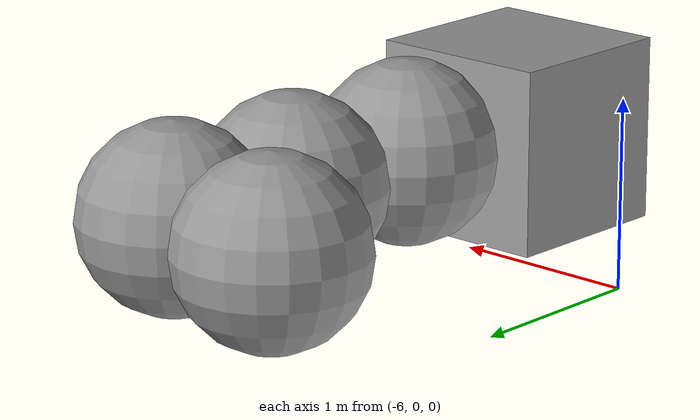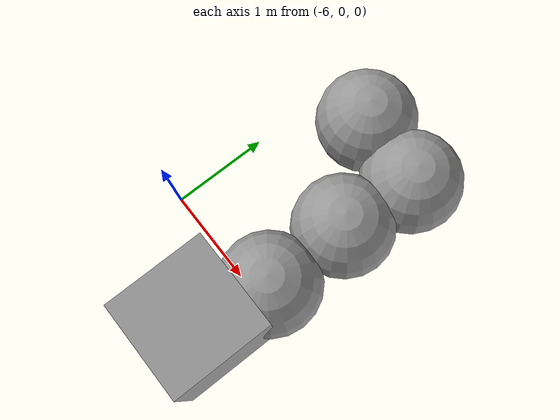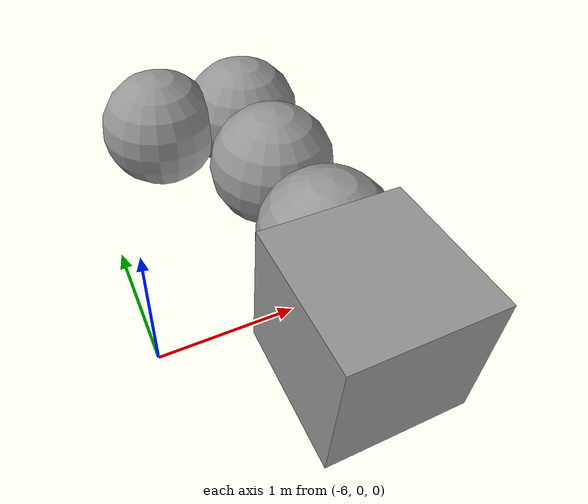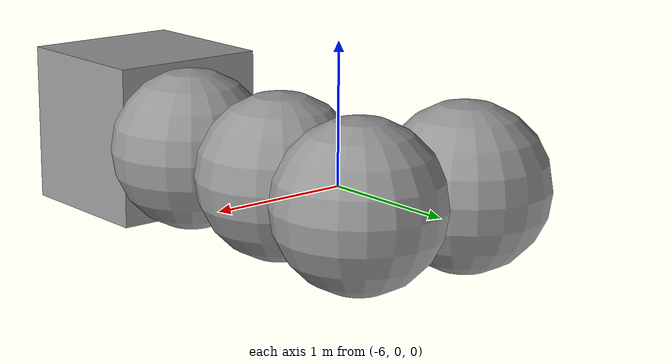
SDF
<?xml version='1.0'?>
<sdf version='1.6'>
  <model name='Robot'>
    <link name='link_12'>
      <inertial>
        <mass>1</mass>
        <inertia>
          <ixx>0.1</ixx>
          <ixy>0</ixy>
          <ixz>0</ixz>
          <iyy>0.1</iyy>
          <iyz>0</iyz>
          <izz>0.1</izz>
        </inertia>
        <pose frame=''>0 0 0 0 -0 0</pose>
      </inertial>
      <pose frame=''>-4.68659 0.152242 0.5 0 -0 0</pose>
      <gravity>1</gravity>
      <self_collide>0</self_collide>
      <kinematic>0</kinematic>
      <enable_wind>0</enable_wind>
      <visual name='visual'>
        <pose frame=''>0 0 0 0 -0 0</pose>
        <geometry>
          <sphere>
            <radius>0.5</radius>
          </sphere>
        </geometry>
        <material>
          <lighting>1</lighting>
          <script>
            <uri>file://media/materials/scripts/gazebo.material</uri>
            <name>Gazebo/Grey</name>
          </script>
          <emissive>0 0 0 1</emissive>
          <shader type='vertex'>
            <normal_map>__default__</normal_map>
          </shader>
        </material>
        <transparency>0</transparency>
        <cast_shadows>1</cast_shadows>
      </visual>
      <collision name='collision'>
        <laser_retro>0</laser_retro>
        <max_contacts>10</max_contacts>
        <pose frame=''>0 0 0 0 -0 0</pose>
        <geometry>
          <sphere>
            <radius>0.5</radius>
          </sphere>
        </geometry>
        <surface>
          <friction>
            <ode>
              <mu>1</mu>
              <mu2>1</mu2>
              <fdir1>0 0 0</fdir1>
              <slip1>0</slip1>
              <slip2>0</slip2>
            </ode>
            <torsional>
              <coefficient>1</coefficient>
              <patch_radius>0</patch_radius>
              <surface_radius>0</surface_radius>
              <use_patch_radius>1</use_patch_radius>
              <ode>
                <slip>0</slip>
              </ode>
            </torsional>
          </friction>
          <bounce>
            <restitution_coefficient>0</restitution_coefficient>
            <threshold>1e+06</threshold>
          </bounce>
          <contact>
            <collide_without_contact>0</collide_without_contact>
            <collide_without_contact_bitmask>1</collide_without_contact_bitmask>
            <collide_bitmask>1</collide_bitmask>
            <ode>
              <soft_cfm>0</soft_cfm>
              <soft_erp>0.2</soft_erp>
              <kp>1e+13</kp>
              <kd>1</kd>
              <max_vel>0.01</max_vel>
              <min_depth>0</min_depth>
            </ode>
            <bullet>
              <split_impulse>1</split_impulse>
              <split_impulse_penetration_threshold>-0.01</split_impulse_penetration_threshold>
              <soft_cfm>0</soft_cfm>
              <soft_erp>0.2</soft_erp>
              <kp>1e+13</kp>
              <kd>1</kd>
            </bullet>
          </contact>
        </surface>
      </collision>
    </link>
    <link name='link_13'>
      <inertial>
        <mass>1</mass>
        <inertia>
          <ixx>0.1</ixx>
          <ixy>0</ixy>
          <ixz>0</ixz>
          <iyy>0.1</iyy>
          <iyz>0</iyz>
          <izz>0.1</izz>
        </inertia>
      </inertial>
      <pose frame=''>-4.69096 1.0203 0.5 0 -0 0</pose>
      <visual name='visual'>
        <pose frame=''>0 0 0 0 -0 0</pose>
        <geometry>
          <sphere>
            <radius>0.5</radius>
          </sphere>
        </geometry>
        <material>
          <lighting>1</lighting>
          <script>
            <uri>file://media/materials/scripts/gazebo.material</uri>
            <name>Gazebo/Grey</name>
          </script>
          <emissive>0 0 0 1</emissive>
        </material>
        <transparency>0</transparency>
        <cast_shadows>1</cast_shadows>
      </visual>
      <collision name='collision'>
        <laser_retro>0</laser_retro>
        <max_contacts>10</max_contacts>
        <pose frame=''>0 0 0 0 -0 0</pose>
        <geometry>
          <sphere>
            <radius>0.5</radius>
          </sphere>
        </geometry>
        <surface>
          <friction>
            <ode>
              <mu>1</mu>
              <mu2>1</mu2>
              <fdir1>0 0 0</fdir1>
              <slip1>0</slip1>
              <slip2>0</slip2>
            </ode>
            <torsional>
              <coefficient>1</coefficient>
              <patch_radius>0</patch_radius>
              <surface_radius>0</surface_radius>
              <use_patch_radius>1</use_patch_radius>
              <ode>
                <slip>0</slip>
              </ode>
            </torsional>
          </friction>
          <bounce>
            <restitution_coefficient>0</restitution_coefficient>
            <threshold>1e+06</threshold>
          </bounce>
          <contact>
            <collide_without_contact>0</collide_without_contact>
            <collide_without_contact_bitmask>1</collide_without_contact_bitmask>
            <collide_bitmask>1</collide_bitmask>
            <ode>
              <soft_cfm>0</soft_cfm>
              <soft_erp>0.2</soft_erp>
              <kp>1e+13</kp>
              <kd>1</kd>
              <max_vel>0.01</max_vel>
              <min_depth>0</min_depth>
            </ode>
            <bullet>
              <split_impulse>1</split_impulse>
              <split_impulse_penetration_threshold>-0.01</split_impulse_penetration_threshold>
              <soft_cfm>0</soft_cfm>
              <soft_erp>0.2</soft_erp>
              <kp>1e+13</kp>
              <kd>1</kd>
            </bullet>
          </contact>
        </surface>
      </collision>
    </link>
    <link name='link_14'>
      <inertial>
        <mass>1</mass>
        <inertia>
          <ixx>0.1</ixx>
          <ixy>0</ixy>
          <ixz>0</ixz>
          <iyy>0.1</iyy>
          <iyz>0</iyz>
          <izz>0.1</izz>
        </inertia>
      </inertial>
      <pose frame=''>-4.62704 1.79374 0.5 0 -0 0</pose>
      <visual name='visual'>
        <pose frame=''>0 0 0 0 -0 0</pose>
        <geometry>
          <sphere>
            <radius>0.5</radius>
          </sphere>
        </geometry>
        <material>
          <lighting>1</lighting>
          <script>
            <uri>file://media/materials/scripts/gazebo.material</uri>
            <name>Gazebo/Grey</name>
          </script>
          <emissive>0 0 0 1</emissive>
        </material>
        <transparency>0</transparency>
        <cast_shadows>1</cast_shadows>
      </visual>
      <collision name='collision'>
        <laser_retro>0</laser_retro>
        <max_contacts>10</max_contacts>
        <pose frame=''>0 0 0 0 -0 0</pose>
        <geometry>
          <sphere>
            <radius>0.5</radius>
          </sphere>
        </geometry>
        <surface>
          <friction>
            <ode>
              <mu>1</mu>
              <mu2>1</mu2>
              <fdir1>0 0 0</fdir1>
              <slip1>0</slip1>
              <slip2>0</slip2>
            </ode>
            <torsional>
              <coefficient>1</coefficient>
              <patch_radius>0</patch_radius>
              <surface_radius>0</surface_radius>
              <use_patch_radius>1</use_patch_radius>
              <ode>
                <slip>0</slip>
              </ode>
            </torsional>
          </friction>
          <bounce>
            <restitution_coefficient>0</restitution_coefficient>
            <threshold>1e+06</threshold>
          </bounce>
          <contact>
            <collide_without_contact>0</collide_without_contact>
            <collide_without_contact_bitmask>1</collide_without_contact_bitmask>
            <collide_bitmask>1</collide_bitmask>
            <ode>
              <soft_cfm>0</soft_cfm>
              <soft_erp>0.2</soft_erp>
              <kp>1e+13</kp>
              <kd>1</kd>
              <max_vel>0.01</max_vel>
              <min_depth>0</min_depth>
            </ode>
            <bullet>
              <split_impulse>1</split_impulse>
              <split_impulse_penetration_threshold>-0.01</split_impulse_penetration_threshold>
              <soft_cfm>0</soft_cfm>
              <soft_erp>0.2</soft_erp>
              <kp>1e+13</kp>
              <kd>1</kd>
            </bullet>
          </contact>
        </surface>
      </collision>
    </link>
    <link name='link_15'>
      <inertial>
        <mass>1</mass>
        <inertia>
          <ixx>0.1</ixx>
          <ixy>0</ixy>
          <ixz>0</ixz>
          <iyy>0.1</iyy>
          <iyz>0</iyz>
          <izz>0.1</izz>
        </inertia>
      </inertial>
      <pose frame=''>-5.36128 1.86089 0.5 0 -0 0</pose>
      <visual name='visual'>
        <pose frame=''>0 0 0 0 -0 0</pose>
        <geometry>
          <sphere>
            <radius>0.5</radius>
          </sphere>
        </geometry>
        <material>
          <lighting>1</lighting>
          <script>
            <uri>file://media/materials/scripts/gazebo.material</uri>
            <name>Gazebo/Grey</name>
          </script>
          <emissive>0 0 0 1</emissive>
        </material>
        <transparency>0</transparency>
        <cast_shadows>1</cast_shadows>
      </visual>
      <collision name='collision'>
        <laser_retro>0</laser_retro>
        <max_contacts>10</max_contacts>
        <pose frame=''>0 0 0 0 -0 0</pose>
        <geometry>
          <sphere>
            <radius>0.5</radius>
          </sphere>
        </geometry>
        <surface>
          <friction>
            <ode>
              <mu>1</mu>
              <mu2>1</mu2>
              <fdir1>0 0 0</fdir1>
              <slip1>0</slip1>
              <slip2>0</slip2>
            </ode>
            <torsional>
              <coefficient>1</coefficient>
              <patch_radius>0</patch_radius>
              <surface_radius>0</surface_radius>
              <use_patch_radius>1</use_patch_radius>
              <ode>
                <slip>0</slip>
              </ode>
            </torsional>
          </friction>
          <bounce>
            <restitution_coefficient>0</restitution_coefficient>
            <threshold>1e+06</threshold>
          </bounce>
          <contact>
            <collide_without_contact>0</collide_without_contact>
            <collide_without_contact_bitmask>1</collide_without_contact_bitmask>
            <collide_bitmask>1</collide_bitmask>
            <ode>
              <soft_cfm>0</soft_cfm>
              <soft_erp>0.2</soft_erp>
              <kp>1e+13</kp>
              <kd>1</kd>
              <max_vel>0.01</max_vel>
              <min_depth>0</min_depth>
            </ode>
            <bullet>
              <split_impulse>1</split_impulse>
              <split_impulse_penetration_threshold>-0.01</split_impulse_penetration_threshold>
              <soft_cfm>0</soft_cfm>
              <soft_erp>0.2</soft_erp>
              <kp>1e+13</kp>
              <kd>1</kd>
            </bullet>
          </contact>
        </surface>
      </collision>
    </link>
    <link name='link_5'>
      <inertial>
        <mass>1</mass>
        <inertia>
          <ixx>0.166667</ixx>
          <ixy>0</ixy>
          <ixz>0</ixz>
          <iyy>0.166667</iyy>
          <iyz>0</iyz>
          <izz>0.166667</izz>
        </inertia>
        <pose frame=''>0 0 0 0 -0 0</pose>
      </inertial>
      <pose frame=''>-4.83573 -0.571615 0.5 0 -0 0</pose>
      <gravity>1</gravity>
      <self_collide>0</self_collide>
      <kinematic>0</kinematic>
      <enable_wind>0</enable_wind>
      <visual name='visual'>
        <pose frame=''>0 0 0 0 -0 0</pose>
        <geometry>
          <box>
            <size>1 1 1</size>
          </box>
        </geometry>
        <material>
          <lighting>1</lighting>
          <script>
            <uri>file://media/materials/scripts/gazebo.material</uri>
            <name>Gazebo/Grey</name>
          </script>
          <emissive>0 0 0 1</emissive>
          <shader type='vertex'>
            <normal_map>__default__</normal_map>
          </shader>
          <ambient>0.3 0.3 0.3 1</ambient>
          <diffuse>0.7 0.7 0.7 1</diffuse>
          <specular>0.01 0.01 0.01 1</specular>
        </material>
        <transparency>0</transparency>
        <cast_shadows>1</cast_shadows>
      </visual>
      <collision name='collision'>
        <laser_retro>0</laser_retro>
        <max_contacts>10</max_contacts>
        <pose frame=''>0 0 0 0 -0 0</pose>
        <geometry>
          <box>
            <size>1 1 1</size>
          </box>
        </geometry>
        <surface>
          <friction>
            <ode>
              <mu>1</mu>
              <mu2>1</mu2>
              <fdir1>0 0 0</fdir1>
              <slip1>0</slip1>
              <slip2>0</slip2>
            </ode>
            <torsional>
              <coefficient>1</coefficient>
              <patch_radius>0</patch_radius>
              <surface_radius>0</surface_radius>
              <use_patch_radius>1</use_patch_radius>
              <ode>
                <slip>0</slip>
              </ode>
            </torsional>
          </friction>
          <bounce>
            <restitution_coefficient>0</restitution_coefficient>
            <threshold>1e+06</threshold>
          </bounce>
          <contact>
            <collide_without_contact>0</collide_without_contact>
            <collide_without_contact_bitmask>1</collide_without_contact_bitmask>
            <collide_bitmask>1</collide_bitmask>
            <ode>
              <soft_cfm>0</soft_cfm>
              <soft_erp>0.2</soft_erp>
              <kp>1e+13</kp>
              <kd>1</kd>
              <max_vel>0.01</max_vel>
              <min_depth>0</min_depth>
            </ode>
            <bullet>
              <split_impulse>1</split_impulse>
              <split_impulse_penetration_threshold>-0.01</split_impulse_penetration_threshold>
              <soft_cfm>0</soft_cfm>
              <soft_erp>0.2</soft_erp>
              <kp>1e+13</kp>
              <kd>1</kd>
            </bullet>
          </contact>
        </surface>
      </collision>
    </link>
    <joint name='link_12_JOINT_5' type='revolute'>
      <parent>link_12</parent>
      <child>link_5</child>
      <pose frame=''>0 0 0 0 -0 0</pose>
      <axis>
        <xyz>0 0 1</xyz>
        <use_parent_model_frame>0</use_parent_model_frame>
        <limit>
          <lower>-1.79769e+308</lower>
          <upper>1.79769e+308</upper>
          <effort>-1</effort>
          <velocity>-1</velocity>
        </limit>
        <dynamics>
          <spring_reference>0</spring_reference>
          <spring_stiffness>0</spring_stiffness>
          <damping>0</damping>
          <friction>0</friction>
        </dynamics>
      </axis>
      <physics>
        <ode>
          <limit>
            <cfm>0</cfm>
            <erp>0.2</erp>
          </limit>
          <suspension>
            <cfm>0</cfm>
            <erp>0.2</erp>
          </suspension>
        </ode>
      </physics>
    </joint>
    <joint name='link_13_JOINT_4' type='ball'>
      <parent>link_13</parent>
      <child>link_12</child>
      <pose frame=''>0 0 0 0 -0 0</pose>
      <physics>
        <ode>
          <limit>
            <cfm>0</cfm>
            <erp>0.2</erp>
          </limit>
          <suspension>
            <cfm>0</cfm>
            <erp>0.2</erp>
          </suspension>
        </ode>
      </physics>
    </joint>
    <joint name='link_14_JOINT_3' type='ball'>
      <parent>link_14</parent>
      <child>link_13</child>
      <pose frame=''>0 0 0 0 -0 0</pose>
      <physics>
        <ode>
          <limit>
            <cfm>0</cfm>
            <erp>0.2</erp>
          </limit>
          <suspension>
            <cfm>0</cfm>
            <erp>0.2</erp>
          </suspension>
        </ode>
      </physics>
    </joint>
    <joint name='link_15_JOINT_6' type='revolute'>
      <parent>link_15</parent>
      <child>link_14</child>
      <pose frame=''>0 0 0 0 -0 0</pose>
      <axis>
        <xyz>1 0 0</xyz>
        <use_parent_model_frame>0</use_parent_model_frame>
        <limit>
          <lower>-1.79769e+308</lower>
          <upper>1.79769e+308</upper>
          <effort>-1</effort>
          <velocity>-1</velocity>
        </limit>
        <dynamics>
          <spring_reference>0</spring_reference>
          <spring_stiffness>0</spring_stiffness>
          <damping>0</damping>
        </dynamics>
      </axis>
      <physics>
        <ode>
          <limit>
            <cfm>0</cfm>
            <erp>0.2</erp>
          </limit>
          <suspension>
            <cfm>0</cfm>
            <erp>0.2</erp>
          </suspension>
        </ode>
      </physics>
    </joint>
    <static>0</static>
    <allow_auto_disable>1</allow_auto_disable>
  </model>
</sdf>
